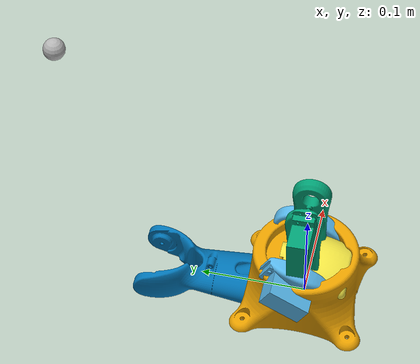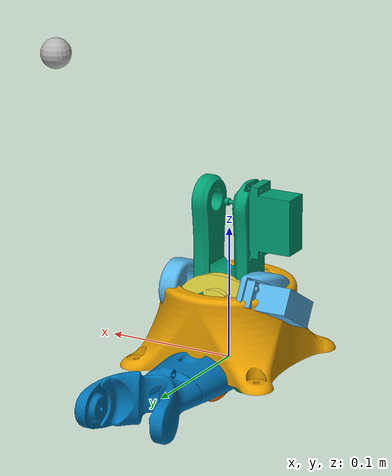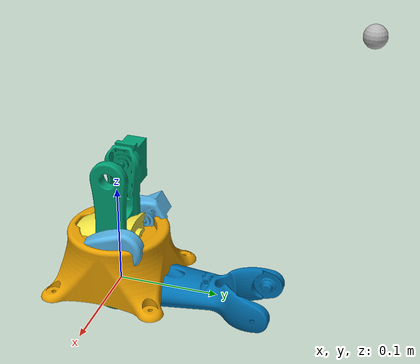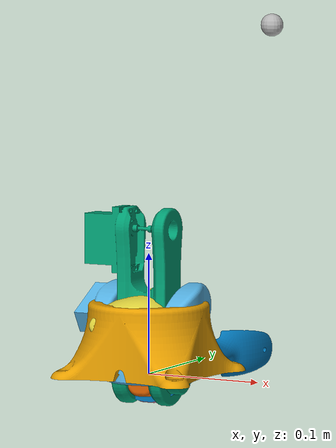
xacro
<?xml version="1.0"?>
<robot xmlns:xacro="http://www.ros.org/wiki/xacro" name="yara">

    <link name="base_link">
        <visual>
            <geometry>
                <mesh filename="package://yara_meshes/files/base.obj"/>
            </geometry>
            <origin rpy="0 0 ${pi}" xyz="0 0 0"/>
        </visual>
    </link>

    <link name="link_1">
        <visual>
            <geometry>
                <mesh filename="package://yara_meshes/files/link1.obj"/>
            </geometry>
            <origin rpy="0 0 ${pi}" xyz="0 0 -0.054355"/>
        </visual>
    </link>

    <joint name="base_to_link_1" type="revolute">
        <axis xyz="0 0 1"/>
        <limit effort="1000.0" lower="${-pi/2}" upper="${pi/2}" velocity="0.5"/>
        <parent link="base_link"/>
        <child link="link_1"/>
        <origin rpy="0 0 0" xyz="0 0 0.054355"/>
    </joint>

    <link name="link_2">
        <visual>
            <geometry>
                <mesh filename="package://yara_meshes/files/link2.obj"/>
            </geometry>
            <origin rpy="0 0 ${pi}" xyz="0 -.017415 -.109967"/>
        </visual>
    </link>

    <joint name="link_1_to_link_2" type="revolute">
        <axis xyz="1 0 0"/>
        <limit effort="1000.0" lower="${-pi/2}" upper="${pi/2}" velocity="0.5"/>
        <parent link="link_1"/>
        <child link="link_2"/>
        <origin rpy="0 0 0" xyz="0 .017415 ${.109967 - 0.054355}"/>
    </joint>

    <link name="link_3">
        <visual>
            <geometry>
                <mesh filename="package://yara_meshes/files/link3.obj"/>
            </geometry>
            <origin rpy="0 0 ${pi}" xyz="0 -.017415 -.229967"/>
        </visual>
    </link>

    <joint name="link_2_to_link_3" type="revolute">
        <axis xyz="1 0 0"/>
        <limit effort="1000.0" lower="${-pi/2}" upper="${pi/2}" velocity="0.5"/>
        <parent link="link_2"/>
        <child link="link_3"/>
        <origin rpy="0 0 0" xyz="0 0 ${.229967 - (0.109967)}"/>
    </joint>

    <link name="link_4">
        <visual>
            <geometry>
                <mesh filename="package://yara_meshes/files/link4.obj"/>
            </geometry>
            <origin rpy="0 0 ${pi}" xyz="0 -.041358 -.273945"/>
        </visual>
    </link>

    <joint name="link_3_to_link_4" type="revolute">
        <axis xyz="0 1 0"/>
        <limit effort="1000.0" lower="${-pi/2}" upper="${pi/2}" velocity="0.5"/>
        <parent link="link_3"/>
        <child link="link_4"/>
        <origin rpy="0 0 0" xyz="0 ${.041358 - .017415} ${.273945 - (0.229967)}"/>
    </joint>

    <link name="link_5">
        <visual>
            <geometry>
                <mesh filename="package://yara_meshes/files/link5.obj"/>
            </geometry>
            <origin rpy="0 0 ${pi}" xyz="0 -0.186507 -.277517"/>
        </visual>
    </link>

    <joint name="link_4_to_link_5" type="revolute">
        <axis xyz="-1 0 0"/>
        <limit effort="1000.0" lower="${-pi/2}" upper="${pi/2}" velocity="0.5"/>
        <parent link="link_4"/>
        <child link="link_5"/>
        <origin rpy="0 0 0" xyz="0 ${.186507 - .041358} ${.277517 - (0.273945)}"/>
    </joint>

    <link name="link_6">
        <visual>
            <geometry>
                <mesh filename="package://yara_meshes/files/link6.obj"/>
            </geometry>
            <origin rpy="0 0 ${pi}" xyz="0 -0.228778 -.27839"/>
        </visual>
    </link>

    <joint name="link_5_to_link_6" type="revolute">
        <axis xyz="0 1 0"/>
        <limit effort="1000.0" lower="${-pi/2}" upper="${pi/2}" velocity="0.5"/>
        <parent link="link_5"/>
        <child link="link_6"/>
        <origin rpy="0 0 0" xyz="0 ${0.228778 - .186507} ${.27839 - (0.277517)}"/>
    </joint>

    <link name="ee">
        <visual>
            <geometry>
                <sphere radius=".01"/>
            </geometry>
            <origin rpy="0 0 0" xyz="0 0 0"/>
        </visual>
    </link>

    <joint name="link_6_to_ee" type="fixed">
        <parent link="link_6"/>
        <child link="ee"/>
        <origin rpy="0 0 0" xyz="0 0 0"/>
    </joint>

</robot>
